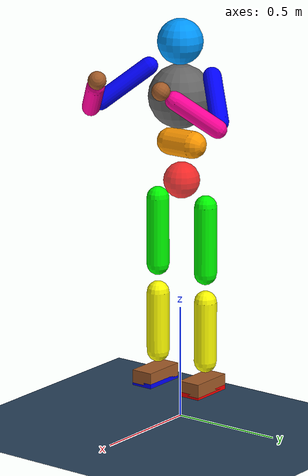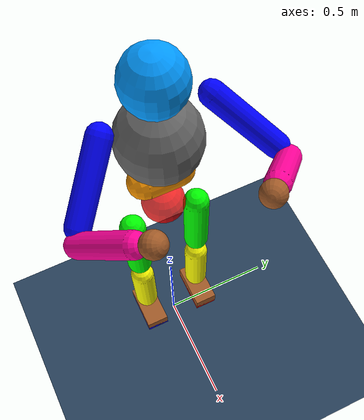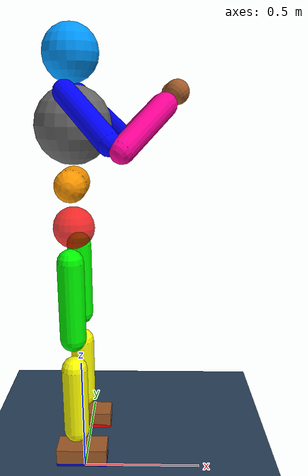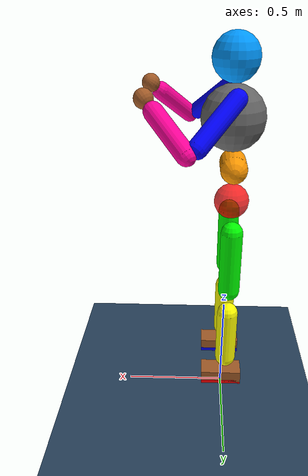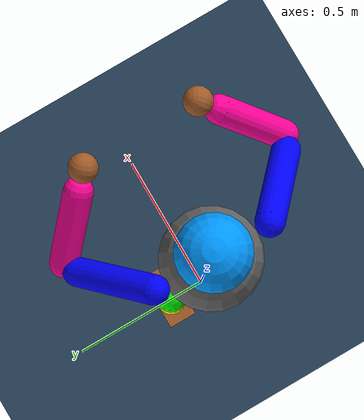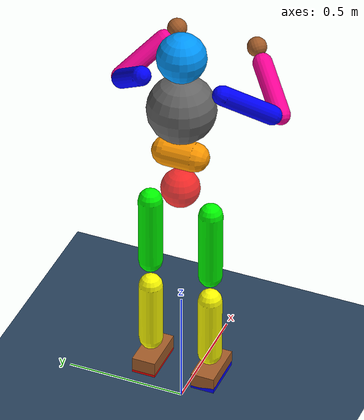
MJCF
<mujoco model="a3">
    <!-- 定义使用弧度制 -->
    <compiler angle="radian"/>

    <option timestep="0.001" cone="pyramidal" jacobian="dense" solver="Newton" iterations="50" tolerance="1e-10"/>
    <size njmax="1200" nconmax="400"/>

    <!-- 定义了模型中使用的纹理、材料和其它资源 -->
    <asset>
        <texture type="skybox" builtin="gradient" rgb1=".3 .5 .7" rgb2="0 0 0" width="512"
            height="512" />
        <texture name="body" type="cube" builtin="flat" mark="cross" width="127" height="1278"
            rgb1="0.8 0.6 0.4" rgb2="0.8 0.6 0.4" markrgb="1 1 1" random="0.01" />
        <material name="body" texture="body" texuniform="true" rgba="0.8 0.6 .4 1" />
        <texture name="grid" type="2d" builtin="checker" width="512" height="512" rgb1=".1 .2 .3"
            rgb2=".2 .3 .4" />
        <material name="grid" texture="grid" texrepeat="1 1" texuniform="true" reflectance=".2" />
    </asset>

    <!-- 定义了默认的几何形状、关节和其他元素的属性。 -->
    <default>
        <motor ctrllimited="false" forcelimited="false"/>
        <default class="body">
            <geom type="capsule" condim="1" friction=".7" solimp=".9 .99 .003" solref=".015 1"
                material="body" />
            <joint damping="0.2" limited="true"/>
        </default>
    </default>

    <!-- 定义了视觉设置，如渲染质量、阴影大小、全局分辨率等。 -->
    <visual>
        <map force="0.1" zfar="30" />
        <rgba haze="0.15 0.25 0.35 1" />
        <quality shadowsize="4096" />
        <global offwidth="800" offheight="800" />
    </visual>

    <worldbody>
        <geom name="floor" size="0 0 .05" type="plane" material="grid" condim="3" />
        <light name="spotlight" mode="targetbodycom" target="torso"
            diffuse=".8 .8 .8" specular="0.3 0.3 0.3" pos="0 -20 4" cutoff="10" />
        <body name="torso" pos="0 0 1.5" childclass="body">
            <light name="top" pos="0 0 2" mode="trackcom" />
            <camera name="back" pos="-3 0 1" xyaxes="0 -1 0 1 0 2" mode="trackcom" />
            <camera name="side" pos="0 -3 1" xyaxes="1 0 0 0 1 2" mode="trackcom" />
            <freejoint name="root" />
            <geom name="torso" type="sphere" size="0.14" pos="0 0 -0.05" rgba="0.4 0.4 0.4 1" />
            <body name="head" pos="0 0 .19">
                <geom name="head" type="sphere" size="0.1" rgba="0 0.6 1 1" />
                <camera name="egocentric" pos=".09 0 0" xyaxes="0 -1 0 .1 0 1" fovy="80" />
            </body>
            <body name="lower_waist" pos="-.01 0 -.26">
                <geom name="lower_waist" fromto="0 -.06 0 0 .06 0" size=".06" rgba="1 0.6 0 1" />
                <body name="pelvis" pos="0 0 -.165">
                    <geom name="butt" type="sphere" size="0.08" rgba="1 0 0 0.8" />
                    <body name="right_thigh" pos="0 -.1 -.1">
                        <joint name="right_hip_y" axis="0 1 0" range="-2.0944 0.7854" armature="0.1925"/>
                        <joint name="right_hip_x" axis="1 0 0" range="-0.7854 0.34907" armature="0.1813"/>
                        <joint name="right_hip_z" axis="0 0 1" range="-0.5236 0.7854" armature="0.1237"/>
                        <geom name="right_thigh" fromto="0 -.03 0 0 -.03 -.3" size=".05" rgba="0 1 0 1" />
                        <body name="right_shin" pos="0 0 -.4">
                            <joint name="right_knee" pos="0 0 .02" axis="0 1 0" range="0 2.618" armature="0.1305"/>
                            <geom name="right_shin" fromto="0 -.03 -.03 0 -.03 -.3" size=".05"
                                rgba="1 1 0 1" />
                            <body name="right_foot" pos="0 0 -.4">
                                <joint name="right_ankle_x" pos="0 0 .04" axis="1 0 0" range="-0.61086 0.7854" armature="0.0653"/>
                                <joint name="right_ankle_y" pos="0 0 .08" axis="0 1 0" range="-1.4835 0.95993" armature="0.1337"/>
                                <geom name="right_foot" type="box" contype="0" conaffinity="0" size="0.1 0.05 0.03" pos=".02 -.03 0"/>
                                <site name="rf_force" size="0.01" pos="0.03 0 -.03"/>
                                <geom name="right_foot_sole" condim="3" group="0" type="box" size="0.1 0.05 0.01" pos="0.02 -.03 -.03" rgba="0 0 1 1"/>
                            </body>
                        </body>
                    </body>
                    <body name="left_thigh" pos="0 .1 -.1">
                        <joint name="left_hip_y" axis="0 1 0" range="-2.0944 0.7854" armature="0.1925"/>
                        <joint name="left_hip_x" axis="1 0 0" range="-0.34907 0.7854" armature="0.1813"/>
                        <joint name="left_hip_z" axis="0 0 1" range="-0.7854 0.5236" armature="0.1237"/>

                        <geom name="left_thigh" fromto="0 .03 0 0 .03 -.3" size=".05" rgba="0 1 0 1" />
                        <body name="left_shin" pos="0 0 -.4">
                            <joint name="left_knee" pos="0 0 .02" axis="0 1 0" range="0 2.618" armature="0.1305"/>
                            <geom name="left_shin" fromto="0 .03 -.03 0 .03 -.3" size=".05"
                                rgba="1 1 0 1" />
                            <body name="left_foot" pos="0 0 -.4">
                                <joint name="left_ankle_x" pos="0 0 .04" axis="1 0 0" range="-0.7854 0.61086" armature="0.0653"/>
                                <joint name="left_ankle_y" pos="0 0 .08" axis="0 1 0" range="-1.4835 0.95993" armature="0.1337"/>
                                <geom name="left_foot" type="box" contype="0" conaffinity="0" size="0.1 0.05 0.03" pos=".02 .03 0"/>
                                <site name="lf_force" size="0.01" pos="0.03 0 -.03"/>
                                <geom name="left_foot_sole" condim="3" group="0" type="box" size="0.1 0.05 0.01" pos="0.02 .03 -.03" rgba="1 0 0 1"/>
                            </body>
                        </body>
                    </body>
                </body>
            </body>
            <body name="right_upper_arm" pos="0 -.17 .06">
                <joint name="right_shoulder1" axis="0 1 0" range="-3.1416 1.0472" armature="0.121"/>
                <joint name="right_shoulder2" axis="1 0 0" range="-1.7453 0.17453" armature="0.121"/>
                <geom name="right_upper_arm" contype="0" conaffinity="0" fromto="0 0 0 .15 -.15 -.15" size=".04 .15"
                    rgba="0 0 1 1" />
                <body name="right_lower_arm" pos=".18 -.18 -.18">
                    <joint name="right_elbow" axis="0 1 0" range="-2.5307 0" armature="0.1054"/>
                    <geom name="right_lower_arm" contype="0" conaffinity="0" fromto=".01 .01 .01 .14 .14 .14" size=".04"
                        rgba="1 0 0.6 1" />
                    <body name="right_hand" pos=".18 .18 .18">
                        <geom name="right_hand" contype="0" conaffinity="0" type="sphere" size=".04" zaxis="1 1 1" />
                    </body>
                </body>
            </body>
            <body name="left_upper_arm" pos="0 .17 .06">
                <joint name="left_shoulder1" axis="0 1 0" range="-3.1416 1.0472" armature="0.121"/>
                <joint name="left_shoulder2" axis="1 0 0" range="-0.17453 1.7453" armature="0.121"/>
                <geom name="left_upper_arm" contype="0" conaffinity="0" fromto="0 0 0 .15 .15 -.15" size=".04 .15"
                    rgba="0 0 1 1" />
                <body name="left_lower_arm" pos=".18 .18 -.18">
                    <joint name="left_elbow" axis="0 1 0" range="-2.5307 0" armature="0.1054"/>
                    <geom name="left_lower_arm" contype="0" conaffinity="0" fromto=".01 -.01 .01 .14 -.14 .14" size=".04"
                        rgba="1 0 0.6 1" />
                    <body name="left_hand" pos=".18 -.18 .18">
                        <geom name="left_hand" contype="0" conaffinity="0" type="sphere" size=".04" zaxis="1 -1 1" />
                    </body>
                </body>
            </body>
        </body>
    </worldbody>

    <actuator>
        <motor name="right_hip_y_motor" joint="right_hip_y" />
        <motor name="right_hip_x_motor" joint="right_hip_x" />
        <motor name="right_hip_z_motor" joint="right_hip_z" />
        <motor name="right_knee_motor" joint="right_knee" />
        <motor name="right_ankle_x_motor" joint="right_ankle_x" />
        <motor name="right_ankle_y_motor" joint="right_ankle_y" />
        <motor name="left_hip_y_motor" joint="left_hip_y" />
        <motor name="left_hip_x_motor" joint="left_hip_x" />
        <motor name="left_hip_z_motor" joint="left_hip_z" />
        <motor name="left_knee_motor" joint="left_knee" />
        <motor name="left_ankle_x_motor" joint="left_ankle_x" />
        <motor name="left_ankle_y_motor" joint="left_ankle_y" />
    </actuator>

    <sensor>
        <!-- F/T sensors -->
        <!-- right foot -->
        <force name="RightFootForceSensor_fsensor" site="rf_force" />
        <torque name="RightFootForceSensor_tsensor" site="rf_force" />
        <!-- left foot -->
        <force name="LeftFootForceSensor_fsensor" site="lf_force" />
        <torque name="LeftFootForceSensor_tsensor" site="lf_force" />
  </sensor>
</mujoco>
